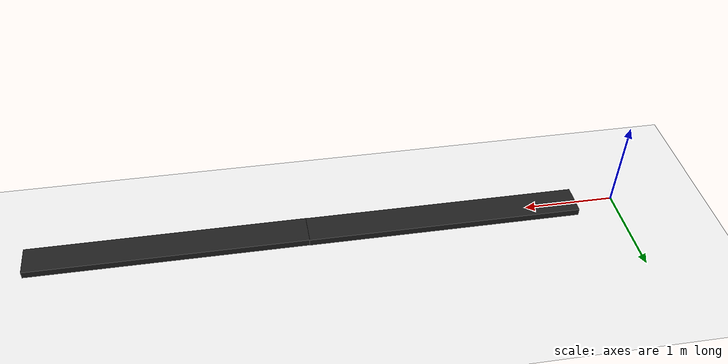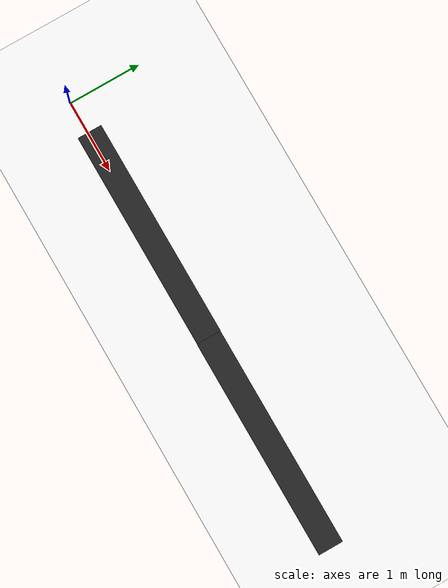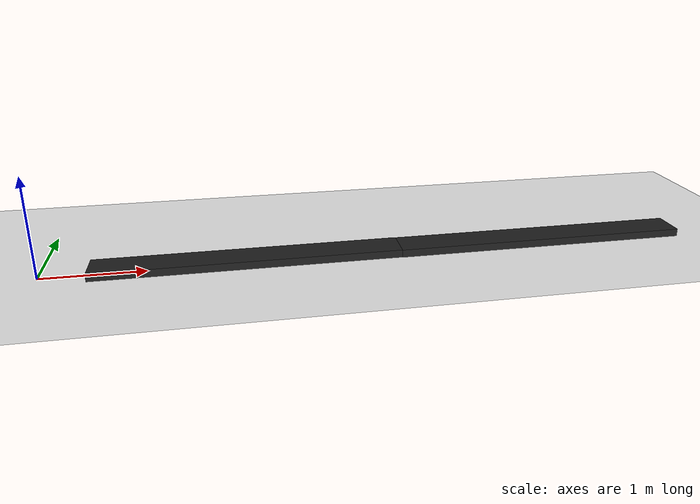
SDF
<sdf version="1.6">
 <world name="default">
  <light name="sun" type="directional">
   <pose>0 0 10 0 -0 0</pose>
   <diffuse>0.8 0.8 0.8 1</diffuse>
   <specular>0.1 0.1 0.1 1</specular>
   <attenuation>
    <range>1000</range>
    <constant>0.9</constant>
    <linear>0.01</linear>
    <quadratic>0.001</quadratic>
   </attenuation>
   <direction>-0.5 0.5 -1</direction>
  </light>
  <model name="ground_plane">
   <static>1</static>
   <link name="link">
    <collision name="collision">
     <geometry><plane><normal>0 0 1</normal><size>100 100</size></plane></geometry>
     <surface><friction><ode><mu>100</mu><mu2>50</mu2></ode></friction></surface>
    </collision>
    <visual name="visual">
     <cast_shadows>0</cast_shadows>
     <geometry><plane><normal>0 0 1</normal><size>100 100</size></plane></geometry>
     <material>
      <script><uri>file://media/materials/scripts/gazebo.material</uri><name>Gazebo/White</name></script>
     </material>
    </visual>
   </link>
  </model>
  <gravity>0 0 -9.8</gravity>
  <magnetic_field>6e-06 2.3e-05 -4.2e-05</magnetic_field>
  <atmosphere type="adiabatic"/>
  <physics name="default_physics" default="0" type="ode">
   <max_step_size>0.001</max_step_size>
   <real_time_factor>1</real_time_factor>
   <real_time_update_rate>1000</real_time_update_rate>
  </physics>
  <scene><ambient>0.4 0.4 0.4 1</ambient><background>0.7 0.7 0.7 1</background><shadows>1</shadows></scene>
  <spherical_coordinates>
   <surface_model>EARTH_WGS84</surface_model>
   <latitude_deg>0</latitude_deg>
   <longitude_deg>0</longitude_deg>
   <elevation>0</elevation>
   <heading_deg>0</heading_deg>
  </spherical_coordinates>
  <model name="unit_box_0">
   <pose>1.95758 0.027375 0.038541 -1e-06 -0.000271 0.000556</pose>
   <link name="unit_box_0::link">
    <inertial>
     <mass>1</mass>
     <inertia>
      <ixx>0.166667</ixx>
      <ixy>0</ixy>
      <ixz>0</ixz>
      <iyy>0.166667</iyy>
      <iyz>0</iyz>
      <izz>0.166667</izz>
     </inertia>
    </inertial>
    <collision name="collision"><geometry><box><size>3.00524 0.33254 0.077896</size></box></geometry></collision>
    <visual name="visual">
     <geometry><box><size>3.00524 0.33254 0.077896</size></box></geometry>
     <material>
      <script><name>Gazebo/Black</name><uri>file://media/materials/scripts/gazebo.material</uri></script>
     </material>
    </visual>
   </link>
  </model>
  <model name="unit_box_0_clone">
   <pose>4.96285 0.025645 0.038541 1e-06 -0.000271 0.000594</pose>
   <link name="unit_box_0::link">
    <inertial>
     <mass>1</mass>
     <inertia>
      <ixx>0.166667</ixx>
      <ixy>0</ixy>
      <ixz>0</ixz>
      <iyy>0.166667</iyy>
      <iyz>0</iyz>
      <izz>0.166667</izz>
     </inertia>
    </inertial>
    <collision name="collision"><geometry><box><size>3.00524 0.33254 0.077896</size></box></geometry></collision>
    <visual name="visual">
     <geometry><box><size>3.00524 0.33254 0.077896</size></box></geometry>
     <material>
      <script><name>Gazebo/Black</name><uri>file://media/materials/scripts/gazebo.material</uri></script>
     </material>
    </visual>
   </link>
  </model>
 </world>
</sdf>
